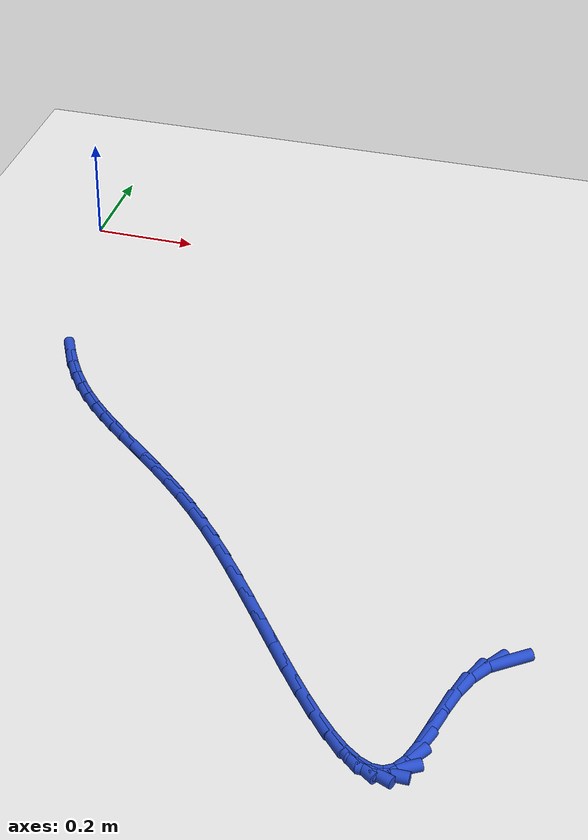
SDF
<sdf version="1.6">
 <world name="default">
  <model name="ground_plane">
   <static>1</static>
   <link name="link">
    <collision name="collision">
     <geometry><plane><normal>0 0 1</normal><size>100 100</size></plane></geometry>
     <surface><friction><ode><mu>100</mu><mu2>50</mu2></ode></friction></surface>
    </collision>
    <visual name="visual">
     <cast_shadows>0</cast_shadows>
     <geometry><plane><normal>0 0 1</normal><size>100 100</size></plane></geometry>
     <material>
      <script><uri>file://media/materials/scripts/gazebo.material</uri><name>Gazebo/WhiteGlow</name></script>
     </material>
    </visual>
   </link>
  </model>
  <model name="line">
   <link name="link_180">
    <pose>1.0483766621928448 -1.0468864164010492 0.01 0 1.57 0.6426283000059991</pose>
    <collision name="collision">
     <geometry><cylinder><radius>0.01</radius><length>0.08</length></cylinder></geometry>
    </collision>
    <visual name="visual">
     <material>
      <script><name>Gazebo/Blue</name><uri>file://media/materials/scripts/gazebo.material</uri></script>
     </material>
     <geometry><cylinder><radius>0.01</radius><length>0.08</length></cylinder></geometry>
    </visual>
   </link>
   <link name="link_181">
    <pose>1.0205547702301474 -1.0677149176974416 0.01 0 1.57 0.9804456313331809</pose>
    <collision name="collision">
     <geometry><cylinder><radius>0.01</radius><length>0.08</length></cylinder></geometry>
    </collision>
    <visual name="visual">
     <material>
      <script><name>Gazebo/Blue</name><uri>file://media/materials/scripts/gazebo.material</uri></script>
     </material>
     <geometry><cylinder><radius>0.01</radius><length>0.08</length></cylinder></geometry>
    </visual>
   </link>
   <link name="link_182">
    <pose>0.999655549154933 -1.0989048205879874 0.01 0 1.57 1.1895714802987156</pose>
    <collision name="collision">
     <geometry><cylinder><radius>0.01</radius><length>0.08</length></cylinder></geometry>
    </collision>
    <visual name="visual">
     <material>
      <script><name>Gazebo/Blue</name><uri>file://media/materials/scripts/gazebo.material</uri></script>
     </material>
     <geometry><cylinder><radius>0.01</radius><length>0.08</length></cylinder></geometry>
    </visual>
   </link>
   <link name="link_183">
    <pose>0.9842535442801359 -1.1373297490555505 0.01 0 1.57 1.3016809473244757</pose>
    <collision name="collision">
     <geometry><cylinder><radius>0.01</radius><length>0.08</length></cylinder></geometry>
    </collision>
    <visual name="visual">
     <material>
      <script><name>Gazebo/Blue</name><uri>file://media/materials/scripts/gazebo.material</uri></script>
     </material>
     <geometry><cylinder><radius>0.01</radius><length>0.08</length></cylinder></geometry>
    </visual>
   </link>
   <link name="link_184">
    <pose>0.972660560147036 -1.1793628611943736 0.01 0 1.57 1.3490536043444479</pose>
    <collision name="collision">
     <geometry><cylinder><radius>0.01</radius><length>0.08</length></cylinder></geometry>
    </collision>
    <visual name="visual">
     <material>
      <script><name>Gazebo/Blue</name><uri>file://media/materials/scripts/gazebo.material</uri></script>
     </material>
     <geometry><cylinder><radius>0.01</radius><length>0.08</length></cylinder></geometry>
    </visual>
   </link>
   <link name="link_185">
    <pose>0.9631884012969136 -1.2213773150986982 0.01 0 1.57 1.3394206948472553</pose>
    <collision name="collision">
     <geometry><cylinder><radius>0.01</radius><length>0.08</length></cylinder></geometry>
    </collision>
    <visual name="visual">
     <material>
      <script><name>Gazebo/Blue</name><uri>file://media/materials/scripts/gazebo.material</uri></script>
     </material>
     <geometry><cylinder><radius>0.01</radius><length>0.08</length></cylinder></geometry>
    </visual>
   </link>
   <link name="link_186">
    <pose>0.954148872271049 -1.259746268862768 0.01 0 1.57 1.2510859093589124</pose>
    <collision name="collision">
     <geometry><cylinder><radius>0.01</radius><length>0.08</length></cylinder></geometry>
    </collision>
    <visual name="visual">
     <material>
      <script><name>Gazebo/Blue</name><uri>file://media/materials/scripts/gazebo.material</uri></script>
     </material>
     <geometry><cylinder><radius>0.01</radius><length>0.08</length></cylinder></geometry>
    </visual>
   </link>
   <link name="link_187">
    <pose>0.9438537776107218 -1.290842880580825 0.01 0 1.57 1.0050342178530487</pose>
    <collision name="collision">
     <geometry><cylinder><radius>0.01</radius><length>0.08</length></cylinder></geometry>
    </collision>
    <visual name="visual">
     <material>
      <script><name>Gazebo/Blue</name><uri>file://media/materials/scripts/gazebo.material</uri></script>
     </material>
     <geometry><cylinder><radius>0.01</radius><length>0.08</length></cylinder></geometry>
    </visual>
   </link>
   <link name="link_188">
    <pose>0.9307794817757108 -1.3114321372439404 0.01 0 1.57 0.5429874550872932</pose>
    <collision name="collision">
     <geometry><cylinder><radius>0.01</radius><length>0.08</length></cylinder></geometry>
    </collision>
    <visual name="visual">
     <material>
      <script><name>Gazebo/Blue</name><uri>file://media/materials/scripts/gazebo.material</uri></script>
     </material>
     <geometry><cylinder><radius>0.01</radius><length>0.08</length></cylinder></geometry>
    </visual>
   </link>
   <link name="link_189">
    <pose>0.9146220137104447 -1.3211831339266127 0.01 0 1.57 -0.005964368248326304</pose>
    <collision name="collision">
     <geometry><cylinder><radius>0.01</radius><length>0.08</length></cylinder></geometry>
    </collision>
    <visual name="visual">
     <material>
      <script><name>Gazebo/Blue</name><uri>file://media/materials/scripts/gazebo.material</uri></script>
     </material>
     <geometry><cylinder><radius>0.01</radius><length>0.08</length></cylinder></geometry>
    </visual>
   </link>
   <link name="link_190">
    <pose>0.8956254179498965 -1.3210698298904815 0.01 0 1.57 -0.39486915342552753</pose>
    <collision name="collision">
     <geometry><cylinder><radius>0.01</radius><length>0.08</length></cylinder></geometry>
    </collision>
    <visual name="visual">
     <material>
      <script><name>Gazebo/Blue</name><uri>file://media/materials/scripts/gazebo.material</uri></script>
     </material>
     <geometry><cylinder><radius>0.01</radius><length>0.08</length></cylinder></geometry>
    </visual>
   </link>
   <link name="link_191">
    <pose>0.8740363532520876 -1.3120724090486235 0.01 0 1.57 -0.6148343696654932</pose>
    <collision name="collision">
     <geometry><cylinder><radius>0.01</radius><length>0.08</length></cylinder></geometry>
    </collision>
    <visual name="visual">
     <material>
      <script><name>Gazebo/Blue</name><uri>file://media/materials/scripts/gazebo.material</uri></script>
     </material>
     <geometry><cylinder><radius>0.01</radius><length>0.08</length></cylinder></geometry>
    </visual>
   </link>
   <link name="link_192">
    <pose>0.8501014783750396 -1.295171055314115 0.01 0 1.57 -0.7411238225518743</pose>
    <collision name="collision">
     <geometry><cylinder><radius>0.01</radius><length>0.08</length></cylinder></geometry>
    </collision>
    <visual name="visual">
     <material>
      <script><name>Gazebo/Blue</name><uri>file://media/materials/scripts/gazebo.material</uri></script>
     </material>
     <geometry><cylinder><radius>0.01</radius><length>0.08</length></cylinder></geometry>
    </visual>
   </link>
   <link name="link_193">
    <pose>0.8240674520767753 -1.2713459526000337 0.01 0 1.57 -0.8180314919233361</pose>
    <collision name="collision">
     <geometry><cylinder><radius>0.01</radius><length>0.08</length></cylinder></geometry>
    </collision>
    <visual name="visual">
     <material>
      <script><name>Gazebo/Blue</name><uri>file://media/materials/scripts/gazebo.material</uri></script>
     </material>
     <geometry><cylinder><radius>0.01</radius><length>0.08</length></cylinder></geometry>
    </visual>
   </link>
   <link name="link_194">
    <pose>0.7961809331153161 -1.2415772848194562 0.01 0 1.57 -0.866802069416336</pose>
    <collision name="collision">
     <geometry><cylinder><radius>0.01</radius><length>0.08</length></cylinder></geometry>
    </collision>
    <visual name="visual">
     <material>
      <script><name>Gazebo/Blue</name><uri>file://media/materials/scripts/gazebo.material</uri></script>
     </material>
     <geometry><cylinder><radius>0.01</radius><length>0.08</length></cylinder></geometry>
    </visual>
   </link>
   <link name="link_195">
    <pose>0.7666885802486838 -1.2068452358854596 0.01 0 1.57 -0.8979587836510633</pose>
    <collision name="collision">
     <geometry><cylinder><radius>0.01</radius><length>0.08</length></cylinder></geometry>
    </collision>
    <visual name="visual">
     <material>
      <script><name>Gazebo/Blue</name><uri>file://media/materials/scripts/gazebo.material</uri></script>
     </material>
     <geometry><cylinder><radius>0.01</radius><length>0.08</length></cylinder></geometry>
    </visual>
   </link>
   <link name="link_196">
    <pose>0.7358370522348999 -1.16812998971112 0.01 0 1.57 -0.9170149212319315</pose>
    <collision name="collision">
     <geometry><cylinder><radius>0.01</radius><length>0.08</length></cylinder></geometry>
    </collision>
    <visual name="visual">
     <material>
      <script><name>Gazebo/Blue</name><uri>file://media/materials/scripts/gazebo.material</uri></script>
     </material>
     <geometry><cylinder><radius>0.01</radius><length>0.08</length></cylinder></geometry>
    </visual>
   </link>
   <link name="link_197">
    <pose>0.7038730078319857 -1.1264117302095136 0.01 0 1.57 -0.926942905133798</pose>
    <collision name="collision">
     <geometry><cylinder><radius>0.01</radius><length>0.08</length></cylinder></geometry>
    </collision>
    <visual name="visual">
     <material>
      <script><name>Gazebo/Blue</name><uri>file://media/materials/scripts/gazebo.material</uri></script>
     </material>
     <geometry><cylinder><radius>0.01</radius><length>0.08</length></cylinder></geometry>
    </visual>
   </link>
   <link name="link_198">
    <pose>0.6710431057979648 -1.0826706412937197 0.01 0 1.57 -0.9292803133435203</pose>
    <collision name="collision">
     <geometry><cylinder><radius>0.01</radius><length>0.08</length></cylinder></geometry>
    </collision>
    <visual name="visual">
     <material>
      <script><name>Gazebo/Blue</name><uri>file://media/materials/scripts/gazebo.material</uri></script>
     </material>
     <geometry><cylinder><radius>0.01</radius><length>0.08</length></cylinder></geometry>
    </visual>
   </link>
   <link name="link_199">
    <pose>0.6375940048908578 -1.0378869068768135 0.01 0 1.57 -0.92463196329085</pose>
    <collision name="collision">
     <geometry><cylinder><radius>0.01</radius><length>0.08</length></cylinder></geometry>
    </collision>
    <visual name="visual">
     <material>
      <script><name>Gazebo/Blue</name><uri>file://media/materials/scripts/gazebo.material</uri></script>
     </material>
     <geometry><cylinder><radius>0.01</radius><length>0.08</length></cylinder></geometry>
    </visual>
   </link>
   <link name="link_200">
    <pose>0.6037723638686867 -0.9930407108718723 0.01 0 1.57 -0.9128679170004336</pose>
    <collision name="collision">
     <geometry><cylinder><radius>0.01</radius><length>0.08</length></cylinder></geometry>
    </collision>
    <visual name="visual">
     <material>
      <script><name>Gazebo/Blue</name><uri>file://media/materials/scripts/gazebo.material</uri></script>
     </material>
     <geometry><cylinder><radius>0.01</radius><length>0.08</length></cylinder></geometry>
    </visual>
   </link>
   <link name="link_201">
    <pose>0.5698248414894727 -0.9491122371919717 0.01 0 1.57 -0.893127541205031</pose>
    <collision name="collision">
     <geometry><cylinder><radius>0.01</radius><length>0.08</length></cylinder></geometry>
    </collision>
    <visual name="visual">
     <material>
      <script><name>Gazebo/Blue</name><uri>file://media/materials/scripts/gazebo.material</uri></script>
     </material>
     <geometry><cylinder><radius>0.01</radius><length>0.08</length></cylinder></geometry>
    </visual>
   </link>
   <link name="link_202">
    <pose>0.535998096511239 -0.9070816697501906 0.01 0 1.57 -0.8636504499565876</pose>
    <collision name="collision">
     <geometry><cylinder><radius>0.01</radius><length>0.08</length></cylinder></geometry>
    </collision>
    <visual name="visual">
     <material>
      <script><name>Gazebo/Blue</name><uri>file://media/materials/scripts/gazebo.material</uri></script>
     </material>
     <geometry><cylinder><radius>0.01</radius><length>0.08</length></cylinder></geometry>
    </visual>
   </link>
   <link name="link_203">
    <pose>0.5025387082671627 -0.8679285611686827 0.01 0 1.57 -0.8256487349097686</pose>
    <collision name="collision">
     <geometry><cylinder><radius>0.01</radius><length>0.08</length></cylinder></geometry>
    </collision>
    <visual name="visual">
     <material>
      <script><name>Gazebo/Blue</name><uri>file://media/materials/scripts/gazebo.material</uri></script>
     </material>
     <geometry><cylinder><radius>0.01</radius><length>0.08</length></cylinder></geometry>
    </visual>
   </link>
   <link name="link_204">
    <pose>0.4696486936395371 -0.8322782692190777 0.01 0 1.57 -0.7889274005487509</pose>
    <collision name="collision">
     <geometry><cylinder><radius>0.01</radius><length>0.08</length></cylinder></geometry>
    </collision>
    <visual name="visual">
     <material>
      <script><name>Gazebo/Blue</name><uri>file://media/materials/scripts/gazebo.material</uri></script>
     </material>
     <geometry><cylinder><radius>0.01</radius><length>0.08</length></cylinder></geometry>
    </visual>
   </link>
   <link name="link_205">
    <pose>0.4374113552630147 -0.7998125775570547 0.01 0 1.57 -0.7565823811689679</pose>
    <collision name="collision">
     <geometry><cylinder><radius>0.01</radius><length>0.08</length></cylinder></geometry>
    </collision>
    <visual name="visual">
     <material>
      <script><name>Gazebo/Blue</name><uri>file://media/materials/scripts/gazebo.material</uri></script>
     </material>
     <geometry><cylinder><radius>0.01</radius><length>0.08</length></cylinder></geometry>
    </visual>
   </link>
   <link name="link_206">
    <pose>0.4058904430674136 -0.7700578594596345 0.01 0 1.57 -0.7301254850811132</pose>
    <collision name="collision">
     <geometry><cylinder><radius>0.01</radius><length>0.08</length></cylinder></geometry>
    </collision>
    <visual name="visual">
     <material>
      <script><name>Gazebo/Blue</name><uri>file://media/materials/scripts/gazebo.material</uri></script>
     </material>
     <geometry><cylinder><radius>0.01</radius><length>0.08</length></cylinder></geometry>
    </visual>
   </link>
   <link name="link_207">
    <pose>0.3751497069825544 -0.7425404882038403 0.01 0 1.57 -0.7110855819968803</pose>
    <collision name="collision">
     <geometry><cylinder><radius>0.01</radius><length>0.08</length></cylinder></geometry>
    </collision>
    <visual name="visual">
     <material>
      <script><name>Gazebo/Blue</name><uri>file://media/materials/scripts/gazebo.material</uri></script>
     </material>
     <geometry><cylinder><radius>0.01</radius><length>0.08</length></cylinder></geometry>
    </visual>
   </link>
   <link name="link_208">
    <pose>0.34525289693825534 -0.716786837066694 0.01 0 1.57 -0.7009345176103501</pose>
    <collision name="collision">
     <geometry><cylinder><radius>0.01</radius><length>0.08</length></cylinder></geometry>
    </collision>
    <visual name="visual">
     <material>
      <script><name>Gazebo/Blue</name><uri>file://media/materials/scripts/gazebo.material</uri></script>
     </material>
     <geometry><cylinder><radius>0.01</radius><length>0.08</length></cylinder></geometry>
    </visual>
   </link>
   <link name="link_209">
    <pose>0.31626376286433533 -0.692323279325217 0.01 0 1.57 -0.7010034553288753</pose>
    <collision name="collision">
     <geometry><cylinder><radius>0.01</radius><length>0.08</length></cylinder></geometry>
    </collision>
    <visual name="visual">
     <material>
      <script><name>Gazebo/Blue</name><uri>file://media/materials/scripts/gazebo.material</uri></script>
     </material>
     <geometry><cylinder><radius>0.01</radius><length>0.08</length></cylinder></geometry>
    </visual>
   </link>
   <link name="link_210">
    <pose>0.28824605469061265 -0.668676188256431 0.01 0 1.57 -0.7123821158243788</pose>
    <collision name="collision">
     <geometry><cylinder><radius>0.01</radius><length>0.08</length></cylinder></geometry>
    </collision>
    <visual name="visual">
     <material>
      <script><name>Gazebo/Blue</name><uri>file://media/materials/scripts/gazebo.material</uri></script>
     </material>
     <geometry><cylinder><radius>0.01</radius><length>0.08</length></cylinder></geometry>
    </visual>
   </link>
   <link name="link_211">
    <pose>0.26126352234690764 -0.6453719371373587 0.01 0 1.57 -0.7357909641714947</pose>
    <collision name="collision">
     <geometry><cylinder><radius>0.01</radius><length>0.08</length></cylinder></geometry>
    </collision>
    <visual name="visual">
     <material>
      <script><name>Gazebo/Blue</name><uri>file://media/materials/scripts/gazebo.material</uri></script>
     </material>
     <geometry><cylinder><radius>0.01</radius><length>0.08</length></cylinder></geometry>
    </visual>
   </link>
   <link name="link_212">
    <pose>0.23537991576303874 -0.621936899245022 0.01 0 1.57 -0.7714229829835322</pose>
    <collision name="collision">
     <geometry><cylinder><radius>0.01</radius><length>0.08</length></cylinder></geometry>
    </collision>
    <visual name="visual">
     <material>
      <script><name>Gazebo/Blue</name><uri>file://media/materials/scripts/gazebo.material</uri></script>
     </material>
     <geometry><cylinder><radius>0.01</radius><length>0.08</length></cylinder></geometry>
    </visual>
   </link>
   <link name="link_213">
    <pose>0.2106589848688248 -0.5978974478564426 0.01 0 1.57 -0.8187723058636307</pose>
    <collision name="collision">
     <geometry><cylinder><radius>0.01</radius><length>0.08</length></cylinder></geometry>
    </collision>
    <visual name="visual">
     <material>
      <script><name>Gazebo/Blue</name><uri>file://media/materials/scripts/gazebo.material</uri></script>
     </material>
     <geometry><cylinder><radius>0.01</radius><length>0.08</length></cylinder></geometry>
    </visual>
   </link>
   <link name="link_214">
    <pose>0.18716447959408494 -0.5727799562486424 0.01 0 1.57 -0.8765001104142471</pose>
    <collision name="collision">
     <geometry><cylinder><radius>0.01</radius><length>0.08</length></cylinder></geometry>
    </collision>
    <visual name="visual">
     <material>
      <script><name>Gazebo/Blue</name><uri>file://media/materials/scripts/gazebo.material</uri></script>
     </material>
     <geometry><cylinder><radius>0.01</radius><length>0.08</length></cylinder></geometry>
    </visual>
   </link>
   <link name="link_215">
    <pose>0.16496014986863738 -0.5461107976986429 0.01 0 1.57 -0.9424160338798747</pose>
    <collision name="collision">
     <geometry><cylinder><radius>0.01</radius><length>0.08</length></cylinder></geometry>
    </collision>
    <visual name="visual">
     <material>
      <script><name>Gazebo/Blue</name><uri>file://media/materials/scripts/gazebo.material</uri></script>
     </material>
     <geometry><cylinder><radius>0.01</radius><length>0.08</length></cylinder></geometry>
    </visual>
   </link>
   <link name="link_216">
    <pose>0.14410974046581917 -0.5174163981934513 0.01 0 1.57 -1.010836377664231</pose>
    <collision name="collision">
     <geometry><cylinder><radius>0.01</radius><length>0.08</length></cylinder></geometry>
    </collision>
    <visual name="visual">
     <material>
      <script><name>Gazebo/Blue</name><uri>file://media/materials/scripts/gazebo.material</uri></script>
     </material>
     <geometry><cylinder><radius>0.01</radius><length>0.08</length></cylinder></geometry>
    </visual>
   </link>
   <link name="link_217">
    <pose>0.12466051612854982 -0.48639164390986134 0.01 0 1.57 -1.0716945530894957</pose>
    <collision name="collision">
     <geometry><cylinder><radius>0.01</radius><length>0.08</length></cylinder></geometry>
    </collision>
    <visual name="visual">
     <material>
      <script><name>Gazebo/Blue</name><uri>file://media/materials/scripts/gazebo.material</uri></script>
     </material>
     <geometry><cylinder><radius>0.01</radius><length>0.08</length></cylinder></geometry>
    </visual>
   </link>
   <link name="link_218">
    <pose>0.10660669419934618 -0.453273675796921 0.01 0 1.57 -1.1246856605095144</pose>
    <collision name="collision">
     <geometry><cylinder><radius>0.01</radius><length>0.08</length></cylinder></geometry>
    </collision>
    <visual name="visual">
     <material>
      <script><name>Gazebo/Blue</name><uri>file://media/materials/scripts/gazebo.material</uri></script>
     </material>
     <geometry><cylinder><radius>0.01</radius><length>0.08</length></cylinder></geometry>
    </visual>
   </link>
  </model>
 </world>
</sdf>
